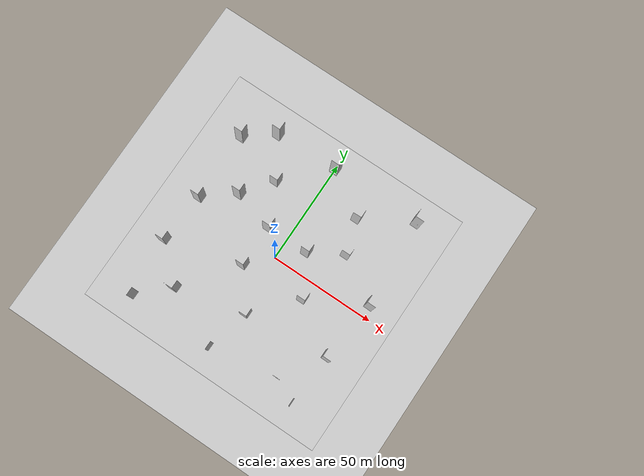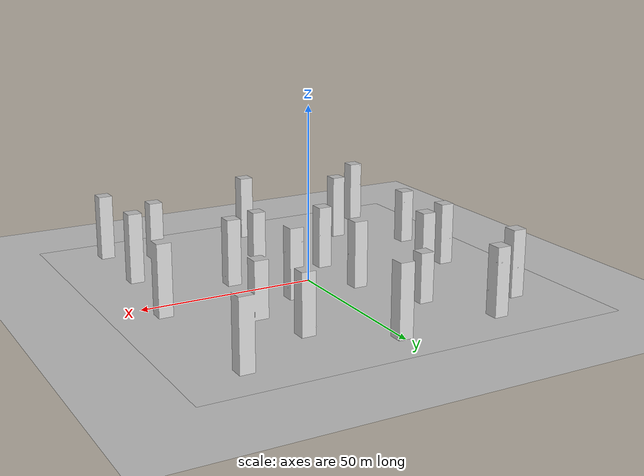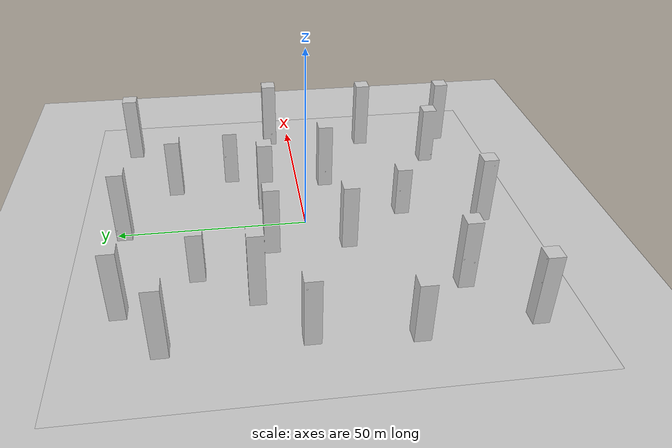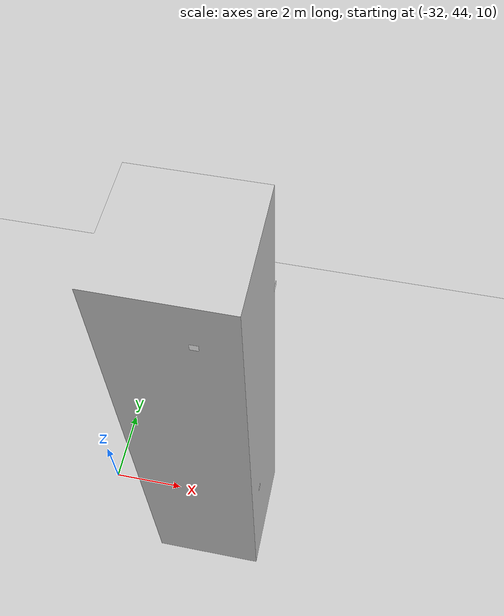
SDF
<?xml version="1.0" ?>
<sdf version="1.9">
  <world name="basic_2_world">
    <physics type="ode">
      <max_step_size>0.001</max_step_size>
      <real_time_factor>1.0</real_time_factor>
      <real_time_update_rate>1000</real_time_update_rate>
    </physics>
    <plugin name='gz::sim::systems::Physics' filename='libgz-sim-physics-system.so'/>
    <plugin name='gz::sim::systems::UserCommands' filename='libgz-sim-user-commands-system.so'/>
    <plugin name='gz::sim::systems::SceneBroadcaster' filename='libgz-sim-scene-broadcaster-system.so'/>
    <plugin name='gz::sim::systems::Contact' filename='libgz-sim-contact-system.so'/>
    <plugin name='gz::sim::systems::Imu' filename='libgz-sim-imu-system.so'/>
    <plugin name='gz::sim::systems::AirPressure' filename='libgz-sim-air-pressure-system.so'/>
    <plugin name='gz::sim::systems::Sensors' filename='libgz-sim-sensors-system.so'>
      <render_engine>ogre2</render_engine>
    </plugin>
    <gravity>0 0 -9.80665</gravity>
    <magnetic_field>6e-06 2.3e-05 -4.2e-05</magnetic_field>
    <atmosphere type='adiabatic'/>
    <scene>
      <grid>false</grid>
      <ambient>0.4 0.4 0.4 1</ambient>
      <background>0.7 0.7 0.7 1</background>
      <shadows>false</shadows>
    </scene>
    <model name="ground_plane">
      <pose>0 0 0 0 0 0</pose>
      <static>true</static>
      <link name="link">
        <collision name="collision">
          <geometry>
            <plane>
              <normal>0 0 1</normal>
              <size>120 120</size>
            </plane>
          </geometry>
        </collision>
        <visual name="visual">
          <geometry>
            <plane>
              <normal>0 0 1</normal>
              <size>120 120</size>
            </plane>
          </geometry>
          <material>
            <ambient>0.8 0.8 0.8 1</ambient>
            <diffuse>0.8 0.8 0.8 1</diffuse>
            <specular>0.8 0.8 0.8 1</specular>
          </material>
        </visual>
      </link>
    </model>
    <include>
      <pose>0 0 0 0 0 0</pose>
      <uri>model://basic_2</uri>
    </include>
    <include>
      <pose>-29.23254470951161 49.1 14.977099995924231 1.5707963267948966 0.0 3.141592653589793</pose>
      <uri>model://aruco_markers/aruco_marker_0002</uri>
    </include>
    <include>
      <pose>-1.0541602191780775 -45.900000000000006 5.851755550138486 1.5707963267948966 0.0 3.141592653589793</pose>
      <uri>model://aruco_markers/aruco_marker_0003</uri>
    </include>
    <include>
      <pose>-8.01218256106657 -7.9 9.829305790295692 1.5707963267948966 0.0 3.141592653589793</pose>
      <uri>model://aruco_markers/aruco_marker_0004</uri>
    </include>
    <include>
      <pose>-29.203096608752027 44.9 17.349173881876393 1.5707963267948966 0.0 0.0</pose>
      <uri>model://aruco_markers/aruco_marker_0005</uri>
    </include>
    <include>
      <pose>-42.74016097229358 39.1 8.387997541590257 1.5707963267948966 0.0 3.141592653589793</pose>
      <uri>model://aruco_markers/aruco_marker_0006</uri>
    </include>
    <include>
      <pose>12.1 9.062545241307616 12.84318163673694 1.5707963267948966 0.0 1.5707963267948966</pose>
      <uri>model://aruco_markers/aruco_marker_0007</uri>
    </include>
    <include>
      <pose>-45.1 5.311674250135161 16.159263661515663 1.5707963267948966 0.0 -1.5707963267948966</pose>
      <uri>model://aruco_markers/aruco_marker_0009</uri>
    </include>
    <include>
      <pose>-44.114618327764305 6.1 7.465537832950164 1.5707963267948966 0.0 3.141592653589793</pose>
      <uri>model://aruco_markers/aruco_marker_0011</uri>
    </include>
    <include>
      <pose>-44.65114909173348 -45.9 12.019877476117708 1.5707963267948966 0.0 3.141592653589793</pose>
      <uri>model://aruco_markers/aruco_marker_0012</uri>
    </include>
    <include>
      <pose>-2.1 49.5781040362832 3.377037380678456 1.5707963267948966 0.0 -1.5707963267948966</pose>
      <uri>model://aruco_markers/aruco_marker_0013</uri>
    </include>
    <include>
      <pose>25.58649643392504 16.9 5.256975622520761 1.5707963267948966 0.0 0.0</pose>
      <uri>model://aruco_markers/aruco_marker_0014</uri>
    </include>
    <include>
      <pose>-31.1 -36.10315671385324 7.534005273368832 1.5707963267948966 0.0 -1.5707963267948966</pose>
      <uri>model://aruco_markers/aruco_marker_0015</uri>
    </include>
    <include>
      <pose>-40.9 2.481696363598527 7.5064722131467185 1.5707963267948966 0.0 1.5707963267948966</pose>
      <uri>model://aruco_markers/aruco_marker_0016</uri>
    </include>
    <include>
      <pose>-44.47851732645218 -45.9 18.509892969437903 1.5707963267948966 0.0 3.141592653589793</pose>
      <uri>model://aruco_markers/aruco_marker_0018</uri>
    </include>
    <include>
      <pose>-17.115348906044826 26.9 4.742074370440876 1.5707963267948966 0.0 0.0</pose>
      <uri>model://aruco_markers/aruco_marker_0019</uri>
    </include>
    <include>
      <pose>-44.07444167377138 34.900000000000006 15.678134705991035 1.5707963267948966 0.0 0.0</pose>
      <uri>model://aruco_markers/aruco_marker_0020</uri>
    </include>
    <include>
      <pose>-41.84327798217791 34.9 3.0053530952007312 1.5707963267948966 0.0 0.0</pose>
      <uri>model://aruco_markers/aruco_marker_0021</uri>
    </include>
    <include>
      <pose>-9.260004372575356 -12.1 9.24766955233584 1.5707963267948966 0.0 0.0</pose>
      <uri>model://aruco_markers/aruco_marker_0022</uri>
    </include>
    <include>
      <pose>22.1 -7.854257865196931 2.462090564364419 1.5707963267948966 0.0 1.5707963267948966</pose>
      <uri>model://aruco_markers/aruco_marker_0023</uri>
    </include>
    <include>
      <pose>0.9 -26.044598016597277 7.556437807091673 1.5707963267948966 0.0 -1.5707963267948966</pose>
      <uri>model://aruco_markers/aruco_marker_0024</uri>
    </include>
    <include>
      <pose>27.9 -42.662296857250624 2.0164687203548777 1.5707963267948966 0.0 -1.5707963267948966</pose>
      <uri>model://aruco_markers/aruco_marker_0025</uri>
    </include>
    <include>
      <pose>43.67178977465973 45.900000000000006 7.719277517531848 1.5707963267948966 0.0 0.0</pose>
      <uri>model://aruco_markers/aruco_marker_0026</uri>
    </include>
    <include>
      <pose>-5.1 -48.96580819357738 17.370060742280813 1.5707963267948966 0.0 -1.5707963267948966</pose>
      <uri>model://aruco_markers/aruco_marker_0027</uri>
    </include>
    <include>
      <pose>-31.1 -33.44891501382584 8.754031769979127 1.5707963267948966 0.0 -1.5707963267948966</pose>
      <uri>model://aruco_markers/aruco_marker_0028</uri>
    </include>
    <include>
      <pose>-29.77998372811145 12.9 2.3724380367846685 1.5707963267948966 0.0 0.0</pose>
      <uri>model://aruco_markers/aruco_marker_0029</uri>
    </include>
    <include>
      <pose>22.9 20.377541047519852 8.738168764120308 1.5707963267948966 0.0 -1.5707963267948966</pose>
      <uri>model://aruco_markers/aruco_marker_0030</uri>
    </include>
    <include>
      <pose>-43.73460966441448 -17.899999999999995 12.713844664336346 1.5707963267948966 0.0 3.141592653589793</pose>
      <uri>model://aruco_markers/aruco_marker_0031</uri>
    </include>
    <include>
      <pose>-1.686011136797033 -50.1 13.708823625552666 1.5707963267948966 0.0 0.0</pose>
      <uri>model://aruco_markers/aruco_marker_0032</uri>
    </include>
    <include>
      <pose>-43.209413612057446 1.9 16.111668758963784 1.5707963267948966 0.0 0.0</pose>
      <uri>model://aruco_markers/aruco_marker_0034</uri>
    </include>
    <include>
      <pose>43.33171059775092 45.9 13.69988715366615 1.5707963267948966 0.0 0.0</pose>
      <uri>model://aruco_markers/aruco_marker_0035</uri>
    </include>
    <include>
      <pose>-1.614718855643451 -50.1 14.626733388167377 1.5707963267948966 0.0 0.0</pose>
      <uri>model://aruco_markers/aruco_marker_0036</uri>
    </include>
    <include>
      <pose>-43.37243632864356 -50.1 6.880233051412823 1.5707963267948966 0.0 0.0</pose>
      <uri>model://aruco_markers/aruco_marker_0037</uri>
    </include>
    <include>
      <pose>44.672246516718225 8.1 3.3733346914342293 1.5707963267948966 0.0 3.141592653589793</pose>
      <uri>model://aruco_markers/aruco_marker_0038</uri>
    </include>
    <include>
      <pose>43.9 5.370097597559235 3.7640865613113395 1.5707963267948966 0.0 -1.5707963267948966</pose>
      <uri>model://aruco_markers/aruco_marker_0040</uri>
    </include>
    <include>
      <pose>12.1 10.657860783978318 3.1407396370317153 1.5707963267948966 0.0 1.5707963267948966</pose>
      <uri>model://aruco_markers/aruco_marker_0041</uri>
    </include>
    <include>
      <pose>-26.9 -34.67494869934533 6.279338321059805 1.5707963267948966 0.0 1.5707963267948966</pose>
      <uri>model://aruco_markers/aruco_marker_0042</uri>
    </include>
    <include>
      <pose>18.12706606409931 37.1 2.3753050003865943 1.5707963267948966 0.0 3.141592653589793</pose>
      <uri>model://aruco_markers/aruco_marker_0043</uri>
    </include>
    <include>
      <pose>-27.9 48.56882235300057 15.08556918404171 1.5707963267948966 0.0 1.5707963267948966</pose>
      <uri>model://aruco_markers/aruco_marker_0044</uri>
    </include>
    <include>
      <pose>-7.9 8.774767230118803 9.037719000887954 1.5707963267948966 0.0 1.5707963267948966</pose>
      <uri>model://aruco_markers/aruco_marker_0045</uri>
    </include>
    <include>
      <pose>-20.553769675611374 26.9 6.272047221454313 1.5707963267948966 0.0 0.0</pose>
      <uri>model://aruco_markers/aruco_marker_0046</uri>
    </include>
    <include>
      <pose>-27.9 45.653642185815926 6.695241786343191 1.5707963267948966 0.0 1.5707963267948966</pose>
      <uri>model://aruco_markers/aruco_marker_0047</uri>
    </include>
    <include>
      <pose>22.1 34.434707912883376 14.159473551990542 1.5707963267948966 0.0 1.5707963267948966</pose>
      <uri>model://aruco_markers/aruco_marker_0048</uri>
    </include>
    <include>
      <pose>8.458602110123936 12.100000000000001 15.989486034547895 1.5707963267948966 0.0 3.141592653589793</pose>
      <uri>model://aruco_markers/aruco_marker_0049</uri>
    </include>
    <include>
      <pose>17.9 -8.119774656814425 4.573616861092575 1.5707963267948966 0.0 -1.5707963267948966</pose>
      <uri>model://aruco_markers/aruco_marker_0050</uri>
    </include>
    <light type="directional" name="sun">
      <cast_shadows>false</cast_shadows>
      <pose>0 0 100 0 0 0</pose>
      <diffuse>0.8 0.8 0.8 1</diffuse>
      <specular>0.2 0.2 0.2 1</specular>
      <attenuation>
        <range>1000</range>
        <constant>0.9</constant>
        <linear>0.01</linear>
        <quadratic>0.001</quadratic>
      </attenuation>
      <direction>-0.5 0.1 -0.9</direction>
    </light>
  </world>
</sdf>

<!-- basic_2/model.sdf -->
<sdf version="1.9">
  <model name="basic_2">
    <static>true</static>
    <link name="link">
      <collision name="collision">
        <geometry>
          <mesh>
            <uri>model://basic_2/meshes/basic_2.stl</uri>
          </mesh>
        </geometry>
      </collision>

      <!-- Attach collision sensor -->
      <sensor name="contact_sensor" type="contact">
        <always_on>1</always_on>
        <update_rate>30</update_rate>
        <contact>
          <collision>collision</collision>
        </contact>
      </sensor>

      <visual name="visual">
        <geometry>
          <mesh>
            <uri>model://basic_2/meshes/basic_2.stl</uri>
          </mesh>
        </geometry>
        <material>
            <ambient>0.8 0.8 0.8 1</ambient>
            <diffuse>0.8 0.8 0.8 1</diffuse>
            <specular>0.8 0.8 0.8 1</specular>
        </material>
      </visual>
    </link>
  </model>
</sdf>

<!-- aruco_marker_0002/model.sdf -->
<sdf version="1.9">
  <model name="aruco_marker_0002">
    <static>true</static>
    <link name="link">
      <visual name="aruco_marker_0002_vis">
        <pose>0 0 0 0 0 0</pose>
        <geometry>
          <plane>
            <normal>0 0 1</normal>
            <size>0.25 0.25</size>
          </plane>
        </geometry>
        <material>
          <pbr>
            <metal>
              <albedo_map>marker_0002.png</albedo_map>
              <metalness>0.0</metalness>
            </metal>
          </pbr>
          <ambient>1 1 1 1</ambient>
          <diffuse>1 1 1 1</diffuse>
          <specular>0 0 0 1</specular>
        </material>
      </visual>
    </link>
  </model>
</sdf>

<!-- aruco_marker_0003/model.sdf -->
<sdf version="1.9">
  <model name="aruco_marker_0003">
    <static>true</static>
    <link name="link">
      <visual name="aruco_marker_0003_vis">
        <pose>0 0 0 0 0 0</pose>
        <geometry>
          <plane>
            <normal>0 0 1</normal>
            <size>0.25 0.25</size>
          </plane>
        </geometry>
        <material>
          <pbr>
            <metal>
              <albedo_map>marker_0003.png</albedo_map>
              <metalness>0.0</metalness>
            </metal>
          </pbr>
          <ambient>1 1 1 1</ambient>
          <diffuse>1 1 1 1</diffuse>
          <specular>0 0 0 1</specular>
        </material>
      </visual>
    </link>
  </model>
</sdf>

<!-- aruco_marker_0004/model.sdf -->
<sdf version="1.9">
  <model name="aruco_marker_0004">
    <static>true</static>
    <link name="link">
      <visual name="aruco_marker_0004_vis">
        <pose>0 0 0 0 0 0</pose>
        <geometry>
          <plane>
            <normal>0 0 1</normal>
            <size>0.25 0.25</size>
          </plane>
        </geometry>
        <material>
          <pbr>
            <metal>
              <albedo_map>marker_0004.png</albedo_map>
              <metalness>0.0</metalness>
            </metal>
          </pbr>
          <ambient>1 1 1 1</ambient>
          <diffuse>1 1 1 1</diffuse>
          <specular>0 0 0 1</specular>
        </material>
      </visual>
    </link>
  </model>
</sdf>

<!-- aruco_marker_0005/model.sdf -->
<sdf version="1.9">
  <model name="aruco_marker_0005">
    <static>true</static>
    <link name="link">
      <visual name="aruco_marker_0005_vis">
        <pose>0 0 0 0 0 0</pose>
        <geometry>
          <plane>
            <normal>0 0 1</normal>
            <size>0.25 0.25</size>
          </plane>
        </geometry>
        <material>
          <pbr>
            <metal>
              <albedo_map>marker_0005.png</albedo_map>
              <metalness>0.0</metalness>
            </metal>
          </pbr>
          <ambient>1 1 1 1</ambient>
          <diffuse>1 1 1 1</diffuse>
          <specular>0 0 0 1</specular>
        </material>
      </visual>
    </link>
  </model>
</sdf>

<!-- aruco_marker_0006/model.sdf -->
<sdf version="1.9">
  <model name="aruco_marker_0006">
    <static>true</static>
    <link name="link">
      <visual name="aruco_marker_0006_vis">
        <pose>0 0 0 0 0 0</pose>
        <geometry>
          <plane>
            <normal>0 0 1</normal>
            <size>0.25 0.25</size>
          </plane>
        </geometry>
        <material>
          <pbr>
            <metal>
              <albedo_map>marker_0006.png</albedo_map>
              <metalness>0.0</metalness>
            </metal>
          </pbr>
          <ambient>1 1 1 1</ambient>
          <diffuse>1 1 1 1</diffuse>
          <specular>0 0 0 1</specular>
        </material>
      </visual>
    </link>
  </model>
</sdf>

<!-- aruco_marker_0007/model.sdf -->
<sdf version="1.9">
  <model name="aruco_marker_0007">
    <static>true</static>
    <link name="link">
      <visual name="aruco_marker_0007_vis">
        <pose>0 0 0 0 0 0</pose>
        <geometry>
          <plane>
            <normal>0 0 1</normal>
            <size>0.25 0.25</size>
          </plane>
        </geometry>
        <material>
          <pbr>
            <metal>
              <albedo_map>marker_0007.png</albedo_map>
              <metalness>0.0</metalness>
            </metal>
          </pbr>
          <ambient>1 1 1 1</ambient>
          <diffuse>1 1 1 1</diffuse>
          <specular>0 0 0 1</specular>
        </material>
      </visual>
    </link>
  </model>
</sdf>

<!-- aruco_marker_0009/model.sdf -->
<sdf version="1.9">
  <model name="aruco_marker_0009">
    <static>true</static>
    <link name="link">
      <visual name="aruco_marker_0009_vis">
        <pose>0 0 0 0 0 0</pose>
        <geometry>
          <plane>
            <normal>0 0 1</normal>
            <size>0.25 0.25</size>
          </plane>
        </geometry>
        <material>
          <pbr>
            <metal>
              <albedo_map>marker_0009.png</albedo_map>
              <metalness>0.0</metalness>
            </metal>
          </pbr>
          <ambient>1 1 1 1</ambient>
          <diffuse>1 1 1 1</diffuse>
          <specular>0 0 0 1</specular>
        </material>
      </visual>
    </link>
  </model>
</sdf>

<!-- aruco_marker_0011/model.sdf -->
<sdf version="1.9">
  <model name="aruco_marker_0011">
    <static>true</static>
    <link name="link">
      <visual name="aruco_marker_0011_vis">
        <pose>0 0 0 0 0 0</pose>
        <geometry>
          <plane>
            <normal>0 0 1</normal>
            <size>0.25 0.25</size>
          </plane>
        </geometry>
        <material>
          <pbr>
            <metal>
              <albedo_map>marker_0011.png</albedo_map>
              <metalness>0.0</metalness>
            </metal>
          </pbr>
          <ambient>1 1 1 1</ambient>
          <diffuse>1 1 1 1</diffuse>
          <specular>0 0 0 1</specular>
        </material>
      </visual>
    </link>
  </model>
</sdf>

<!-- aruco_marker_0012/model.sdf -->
<sdf version="1.9">
  <model name="aruco_marker_0012">
    <static>true</static>
    <link name="link">
      <visual name="aruco_marker_0012_vis">
        <pose>0 0 0 0 0 0</pose>
        <geometry>
          <plane>
            <normal>0 0 1</normal>
            <size>0.25 0.25</size>
          </plane>
        </geometry>
        <material>
          <pbr>
            <metal>
              <albedo_map>marker_0012.png</albedo_map>
              <metalness>0.0</metalness>
            </metal>
          </pbr>
          <ambient>1 1 1 1</ambient>
          <diffuse>1 1 1 1</diffuse>
          <specular>0 0 0 1</specular>
        </material>
      </visual>
    </link>
  </model>
</sdf>

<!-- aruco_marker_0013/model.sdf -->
<sdf version="1.9">
  <model name="aruco_marker_0013">
    <static>true</static>
    <link name="link">
      <visual name="aruco_marker_0013_vis">
        <pose>0 0 0 0 0 0</pose>
        <geometry>
          <plane>
            <normal>0 0 1</normal>
            <size>0.25 0.25</size>
          </plane>
        </geometry>
        <material>
          <pbr>
            <metal>
              <albedo_map>marker_0013.png</albedo_map>
              <metalness>0.0</metalness>
            </metal>
          </pbr>
          <ambient>1 1 1 1</ambient>
          <diffuse>1 1 1 1</diffuse>
          <specular>0 0 0 1</specular>
        </material>
      </visual>
    </link>
  </model>
</sdf>

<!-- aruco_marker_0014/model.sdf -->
<sdf version="1.9">
  <model name="aruco_marker_0014">
    <static>true</static>
    <link name="link">
      <visual name="aruco_marker_0014_vis">
        <pose>0 0 0 0 0 0</pose>
        <geometry>
          <plane>
            <normal>0 0 1</normal>
            <size>0.25 0.25</size>
          </plane>
        </geometry>
        <material>
          <pbr>
            <metal>
              <albedo_map>marker_0014.png</albedo_map>
              <metalness>0.0</metalness>
            </metal>
          </pbr>
          <ambient>1 1 1 1</ambient>
          <diffuse>1 1 1 1</diffuse>
          <specular>0 0 0 1</specular>
        </material>
      </visual>
    </link>
  </model>
</sdf>

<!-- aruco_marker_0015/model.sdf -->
<sdf version="1.9">
  <model name="aruco_marker_0015">
    <static>true</static>
    <link name="link">
      <visual name="aruco_marker_0015_vis">
        <pose>0 0 0 0 0 0</pose>
        <geometry>
          <plane>
            <normal>0 0 1</normal>
            <size>0.25 0.25</size>
          </plane>
        </geometry>
        <material>
          <pbr>
            <metal>
              <albedo_map>marker_0015.png</albedo_map>
              <metalness>0.0</metalness>
            </metal>
          </pbr>
          <ambient>1 1 1 1</ambient>
          <diffuse>1 1 1 1</diffuse>
          <specular>0 0 0 1</specular>
        </material>
      </visual>
    </link>
  </model>
</sdf>

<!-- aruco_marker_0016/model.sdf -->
<sdf version="1.9">
  <model name="aruco_marker_0016">
    <static>true</static>
    <link name="link">
      <visual name="aruco_marker_0016_vis">
        <pose>0 0 0 0 0 0</pose>
        <geometry>
          <plane>
            <normal>0 0 1</normal>
            <size>0.25 0.25</size>
          </plane>
        </geometry>
        <material>
          <pbr>
            <metal>
              <albedo_map>marker_0016.png</albedo_map>
              <metalness>0.0</metalness>
            </metal>
          </pbr>
          <ambient>1 1 1 1</ambient>
          <diffuse>1 1 1 1</diffuse>
          <specular>0 0 0 1</specular>
        </material>
      </visual>
    </link>
  </model>
</sdf>

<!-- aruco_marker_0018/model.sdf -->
<sdf version="1.9">
  <model name="aruco_marker_0018">
    <static>true</static>
    <link name="link">
      <visual name="aruco_marker_0018_vis">
        <pose>0 0 0 0 0 0</pose>
        <geometry>
          <plane>
            <normal>0 0 1</normal>
            <size>0.25 0.25</size>
          </plane>
        </geometry>
        <material>
          <pbr>
            <metal>
              <albedo_map>marker_0018.png</albedo_map>
              <metalness>0.0</metalness>
            </metal>
          </pbr>
          <ambient>1 1 1 1</ambient>
          <diffuse>1 1 1 1</diffuse>
          <specular>0 0 0 1</specular>
        </material>
      </visual>
    </link>
  </model>
</sdf>

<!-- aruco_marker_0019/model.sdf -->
<sdf version="1.9">
  <model name="aruco_marker_0019">
    <static>true</static>
    <link name="link">
      <visual name="aruco_marker_0019_vis">
        <pose>0 0 0 0 0 0</pose>
        <geometry>
          <plane>
            <normal>0 0 1</normal>
            <size>0.25 0.25</size>
          </plane>
        </geometry>
        <material>
          <pbr>
            <metal>
              <albedo_map>marker_0019.png</albedo_map>
              <metalness>0.0</metalness>
            </metal>
          </pbr>
          <ambient>1 1 1 1</ambient>
          <diffuse>1 1 1 1</diffuse>
          <specular>0 0 0 1</specular>
        </material>
      </visual>
    </link>
  </model>
</sdf>

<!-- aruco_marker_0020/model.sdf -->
<sdf version="1.9">
  <model name="aruco_marker_0020">
    <static>true</static>
    <link name="link">
      <visual name="aruco_marker_0020_vis">
        <pose>0 0 0 0 0 0</pose>
        <geometry>
          <plane>
            <normal>0 0 1</normal>
            <size>0.25 0.25</size>
          </plane>
        </geometry>
        <material>
          <pbr>
            <metal>
              <albedo_map>marker_0020.png</albedo_map>
              <metalness>0.0</metalness>
            </metal>
          </pbr>
          <ambient>1 1 1 1</ambient>
          <diffuse>1 1 1 1</diffuse>
          <specular>0 0 0 1</specular>
        </material>
      </visual>
    </link>
  </model>
</sdf>

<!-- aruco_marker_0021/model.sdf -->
<sdf version="1.9">
  <model name="aruco_marker_0021">
    <static>true</static>
    <link name="link">
      <visual name="aruco_marker_0021_vis">
        <pose>0 0 0 0 0 0</pose>
        <geometry>
          <plane>
            <normal>0 0 1</normal>
            <size>0.25 0.25</size>
          </plane>
        </geometry>
        <material>
          <pbr>
            <metal>
              <albedo_map>marker_0021.png</albedo_map>
              <metalness>0.0</metalness>
            </metal>
          </pbr>
          <ambient>1 1 1 1</ambient>
          <diffuse>1 1 1 1</diffuse>
          <specular>0 0 0 1</specular>
        </material>
      </visual>
    </link>
  </model>
</sdf>

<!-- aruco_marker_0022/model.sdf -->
<sdf version="1.9">
  <model name="aruco_marker_0022">
    <static>true</static>
    <link name="link">
      <visual name="aruco_marker_0022_vis">
        <pose>0 0 0 0 0 0</pose>
        <geometry>
          <plane>
            <normal>0 0 1</normal>
            <size>0.25 0.25</size>
          </plane>
        </geometry>
        <material>
          <pbr>
            <metal>
              <albedo_map>marker_0022.png</albedo_map>
              <metalness>0.0</metalness>
            </metal>
          </pbr>
          <ambient>1 1 1 1</ambient>
          <diffuse>1 1 1 1</diffuse>
          <specular>0 0 0 1</specular>
        </material>
      </visual>
    </link>
  </model>
</sdf>

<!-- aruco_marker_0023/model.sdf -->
<sdf version="1.9">
  <model name="aruco_marker_0023">
    <static>true</static>
    <link name="link">
      <visual name="aruco_marker_0023_vis">
        <pose>0 0 0 0 0 0</pose>
        <geometry>
          <plane>
            <normal>0 0 1</normal>
            <size>0.25 0.25</size>
          </plane>
        </geometry>
        <material>
          <pbr>
            <metal>
              <albedo_map>marker_0023.png</albedo_map>
              <metalness>0.0</metalness>
            </metal>
          </pbr>
          <ambient>1 1 1 1</ambient>
          <diffuse>1 1 1 1</diffuse>
          <specular>0 0 0 1</specular>
        </material>
      </visual>
    </link>
  </model>
</sdf>

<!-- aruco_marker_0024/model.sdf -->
<sdf version="1.9">
  <model name="aruco_marker_0024">
    <static>true</static>
    <link name="link">
      <visual name="aruco_marker_0024_vis">
        <pose>0 0 0 0 0 0</pose>
        <geometry>
          <plane>
            <normal>0 0 1</normal>
            <size>0.25 0.25</size>
          </plane>
        </geometry>
        <material>
          <pbr>
            <metal>
              <albedo_map>marker_0024.png</albedo_map>
              <metalness>0.0</metalness>
            </metal>
          </pbr>
          <ambient>1 1 1 1</ambient>
          <diffuse>1 1 1 1</diffuse>
          <specular>0 0 0 1</specular>
        </material>
      </visual>
    </link>
  </model>
</sdf>

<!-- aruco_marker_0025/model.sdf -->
<sdf version="1.9">
  <model name="aruco_marker_0025">
    <static>true</static>
    <link name="link">
      <visual name="aruco_marker_0025_vis">
        <pose>0 0 0 0 0 0</pose>
        <geometry>
          <plane>
            <normal>0 0 1</normal>
            <size>0.25 0.25</size>
          </plane>
        </geometry>
        <material>
          <pbr>
            <metal>
              <albedo_map>marker_0025.png</albedo_map>
              <metalness>0.0</metalness>
            </metal>
          </pbr>
          <ambient>1 1 1 1</ambient>
          <diffuse>1 1 1 1</diffuse>
          <specular>0 0 0 1</specular>
        </material>
      </visual>
    </link>
  </model>
</sdf>

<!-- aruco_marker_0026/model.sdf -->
<sdf version="1.9">
  <model name="aruco_marker_0026">
    <static>true</static>
    <link name="link">
      <visual name="aruco_marker_0026_vis">
        <pose>0 0 0 0 0 0</pose>
        <geometry>
          <plane>
            <normal>0 0 1</normal>
            <size>0.25 0.25</size>
          </plane>
        </geometry>
        <material>
          <pbr>
            <metal>
              <albedo_map>marker_0026.png</albedo_map>
              <metalness>0.0</metalness>
            </metal>
          </pbr>
          <ambient>1 1 1 1</ambient>
          <diffuse>1 1 1 1</diffuse>
          <specular>0 0 0 1</specular>
        </material>
      </visual>
    </link>
  </model>
</sdf>

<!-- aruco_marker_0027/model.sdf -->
<sdf version="1.9">
  <model name="aruco_marker_0027">
    <static>true</static>
    <link name="link">
      <visual name="aruco_marker_0027_vis">
        <pose>0 0 0 0 0 0</pose>
        <geometry>
          <plane>
            <normal>0 0 1</normal>
            <size>0.25 0.25</size>
          </plane>
        </geometry>
        <material>
          <pbr>
            <metal>
              <albedo_map>marker_0027.png</albedo_map>
              <metalness>0.0</metalness>
            </metal>
          </pbr>
          <ambient>1 1 1 1</ambient>
          <diffuse>1 1 1 1</diffuse>
          <specular>0 0 0 1</specular>
        </material>
      </visual>
    </link>
  </model>
</sdf>

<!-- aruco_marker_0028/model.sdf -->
<sdf version="1.9">
  <model name="aruco_marker_0028">
    <static>true</static>
    <link name="link">
      <visual name="aruco_marker_0028_vis">
        <pose>0 0 0 0 0 0</pose>
        <geometry>
          <plane>
            <normal>0 0 1</normal>
            <size>0.25 0.25</size>
          </plane>
        </geometry>
        <material>
          <pbr>
            <metal>
              <albedo_map>marker_0028.png</albedo_map>
              <metalness>0.0</metalness>
            </metal>
          </pbr>
          <ambient>1 1 1 1</ambient>
          <diffuse>1 1 1 1</diffuse>
          <specular>0 0 0 1</specular>
        </material>
      </visual>
    </link>
  </model>
</sdf>

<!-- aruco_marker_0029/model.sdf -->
<sdf version="1.9">
  <model name="aruco_marker_0029">
    <static>true</static>
    <link name="link">
      <visual name="aruco_marker_0029_vis">
        <pose>0 0 0 0 0 0</pose>
        <geometry>
          <plane>
            <normal>0 0 1</normal>
            <size>0.25 0.25</size>
          </plane>
        </geometry>
        <material>
          <pbr>
            <metal>
              <albedo_map>marker_0029.png</albedo_map>
              <metalness>0.0</metalness>
            </metal>
          </pbr>
          <ambient>1 1 1 1</ambient>
          <diffuse>1 1 1 1</diffuse>
          <specular>0 0 0 1</specular>
        </material>
      </visual>
    </link>
  </model>
</sdf>

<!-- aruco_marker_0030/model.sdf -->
<sdf version="1.9">
  <model name="aruco_marker_0030">
    <static>true</static>
    <link name="link">
      <visual name="aruco_marker_0030_vis">
        <pose>0 0 0 0 0 0</pose>
        <geometry>
          <plane>
            <normal>0 0 1</normal>
            <size>0.25 0.25</size>
          </plane>
        </geometry>
        <material>
          <pbr>
            <metal>
              <albedo_map>marker_0030.png</albedo_map>
              <metalness>0.0</metalness>
            </metal>
          </pbr>
          <ambient>1 1 1 1</ambient>
          <diffuse>1 1 1 1</diffuse>
          <specular>0 0 0 1</specular>
        </material>
      </visual>
    </link>
  </model>
</sdf>

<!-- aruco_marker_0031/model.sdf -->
<sdf version="1.9">
  <model name="aruco_marker_0031">
    <static>true</static>
    <link name="link">
      <visual name="aruco_marker_0031_vis">
        <pose>0 0 0 0 0 0</pose>
        <geometry>
          <plane>
            <normal>0 0 1</normal>
            <size>0.25 0.25</size>
          </plane>
        </geometry>
        <material>
          <pbr>
            <metal>
              <albedo_map>marker_0031.png</albedo_map>
              <metalness>0.0</metalness>
            </metal>
          </pbr>
          <ambient>1 1 1 1</ambient>
          <diffuse>1 1 1 1</diffuse>
          <specular>0 0 0 1</specular>
        </material>
      </visual>
    </link>
  </model>
</sdf>

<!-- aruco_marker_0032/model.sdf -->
<sdf version="1.9">
  <model name="aruco_marker_0032">
    <static>true</static>
    <link name="link">
      <visual name="aruco_marker_0032_vis">
        <pose>0 0 0 0 0 0</pose>
        <geometry>
          <plane>
            <normal>0 0 1</normal>
            <size>0.25 0.25</size>
          </plane>
        </geometry>
        <material>
          <pbr>
            <metal>
              <albedo_map>marker_0032.png</albedo_map>
              <metalness>0.0</metalness>
            </metal>
          </pbr>
          <ambient>1 1 1 1</ambient>
          <diffuse>1 1 1 1</diffuse>
          <specular>0 0 0 1</specular>
        </material>
      </visual>
    </link>
  </model>
</sdf>

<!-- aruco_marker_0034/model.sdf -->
<sdf version="1.9">
  <model name="aruco_marker_0034">
    <static>true</static>
    <link name="link">
      <visual name="aruco_marker_0034_vis">
        <pose>0 0 0 0 0 0</pose>
        <geometry>
          <plane>
            <normal>0 0 1</normal>
            <size>0.25 0.25</size>
          </plane>
        </geometry>
        <material>
          <pbr>
            <metal>
              <albedo_map>marker_0034.png</albedo_map>
              <metalness>0.0</metalness>
            </metal>
          </pbr>
          <ambient>1 1 1 1</ambient>
          <diffuse>1 1 1 1</diffuse>
          <specular>0 0 0 1</specular>
        </material>
      </visual>
    </link>
  </model>
</sdf>

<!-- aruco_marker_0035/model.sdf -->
<sdf version="1.9">
  <model name="aruco_marker_0035">
    <static>true</static>
    <link name="link">
      <visual name="aruco_marker_0035_vis">
        <pose>0 0 0 0 0 0</pose>
        <geometry>
          <plane>
            <normal>0 0 1</normal>
            <size>0.25 0.25</size>
          </plane>
        </geometry>
        <material>
          <pbr>
            <metal>
              <albedo_map>marker_0035.png</albedo_map>
              <metalness>0.0</metalness>
            </metal>
          </pbr>
          <ambient>1 1 1 1</ambient>
          <diffuse>1 1 1 1</diffuse>
          <specular>0 0 0 1</specular>
        </material>
      </visual>
    </link>
  </model>
</sdf>

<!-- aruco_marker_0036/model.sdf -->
<sdf version="1.9">
  <model name="aruco_marker_0036">
    <static>true</static>
    <link name="link">
      <visual name="aruco_marker_0036_vis">
        <pose>0 0 0 0 0 0</pose>
        <geometry>
          <plane>
            <normal>0 0 1</normal>
            <size>0.25 0.25</size>
          </plane>
        </geometry>
        <material>
          <pbr>
            <metal>
              <albedo_map>marker_0036.png</albedo_map>
              <metalness>0.0</metalness>
            </metal>
          </pbr>
          <ambient>1 1 1 1</ambient>
          <diffuse>1 1 1 1</diffuse>
          <specular>0 0 0 1</specular>
        </material>
      </visual>
    </link>
  </model>
</sdf>

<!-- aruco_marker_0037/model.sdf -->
<sdf version="1.9">
  <model name="aruco_marker_0037">
    <static>true</static>
    <link name="link">
      <visual name="aruco_marker_0037_vis">
        <pose>0 0 0 0 0 0</pose>
        <geometry>
          <plane>
            <normal>0 0 1</normal>
            <size>0.25 0.25</size>
          </plane>
        </geometry>
        <material>
          <pbr>
            <metal>
              <albedo_map>marker_0037.png</albedo_map>
              <metalness>0.0</metalness>
            </metal>
          </pbr>
          <ambient>1 1 1 1</ambient>
          <diffuse>1 1 1 1</diffuse>
          <specular>0 0 0 1</specular>
        </material>
      </visual>
    </link>
  </model>
</sdf>

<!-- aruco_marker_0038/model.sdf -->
<sdf version="1.9">
  <model name="aruco_marker_0038">
    <static>true</static>
    <link name="link">
      <visual name="aruco_marker_0038_vis">
        <pose>0 0 0 0 0 0</pose>
        <geometry>
          <plane>
            <normal>0 0 1</normal>
            <size>0.25 0.25</size>
          </plane>
        </geometry>
        <material>
          <pbr>
            <metal>
              <albedo_map>marker_0038.png</albedo_map>
              <metalness>0.0</metalness>
            </metal>
          </pbr>
          <ambient>1 1 1 1</ambient>
          <diffuse>1 1 1 1</diffuse>
          <specular>0 0 0 1</specular>
        </material>
      </visual>
    </link>
  </model>
</sdf>

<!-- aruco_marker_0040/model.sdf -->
<sdf version="1.9">
  <model name="aruco_marker_0040">
    <static>true</static>
    <link name="link">
      <visual name="aruco_marker_0040_vis">
        <pose>0 0 0 0 0 0</pose>
        <geometry>
          <plane>
            <normal>0 0 1</normal>
            <size>0.25 0.25</size>
          </plane>
        </geometry>
        <material>
          <pbr>
            <metal>
              <albedo_map>marker_0040.png</albedo_map>
              <metalness>0.0</metalness>
            </metal>
          </pbr>
          <ambient>1 1 1 1</ambient>
          <diffuse>1 1 1 1</diffuse>
          <specular>0 0 0 1</specular>
        </material>
      </visual>
    </link>
  </model>
</sdf>

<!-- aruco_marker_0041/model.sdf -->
<sdf version="1.9">
  <model name="aruco_marker_0041">
    <static>true</static>
    <link name="link">
      <visual name="aruco_marker_0041_vis">
        <pose>0 0 0 0 0 0</pose>
        <geometry>
          <plane>
            <normal>0 0 1</normal>
            <size>0.25 0.25</size>
          </plane>
        </geometry>
        <material>
          <pbr>
            <metal>
              <albedo_map>marker_0041.png</albedo_map>
              <metalness>0.0</metalness>
            </metal>
          </pbr>
          <ambient>1 1 1 1</ambient>
          <diffuse>1 1 1 1</diffuse>
          <specular>0 0 0 1</specular>
        </material>
      </visual>
    </link>
  </model>
</sdf>

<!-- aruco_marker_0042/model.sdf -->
<sdf version="1.9">
  <model name="aruco_marker_0042">
    <static>true</static>
    <link name="link">
      <visual name="aruco_marker_0042_vis">
        <pose>0 0 0 0 0 0</pose>
        <geometry>
          <plane>
            <normal>0 0 1</normal>
            <size>0.25 0.25</size>
          </plane>
        </geometry>
        <material>
          <pbr>
            <metal>
              <albedo_map>marker_0042.png</albedo_map>
              <metalness>0.0</metalness>
            </metal>
          </pbr>
          <ambient>1 1 1 1</ambient>
          <diffuse>1 1 1 1</diffuse>
          <specular>0 0 0 1</specular>
        </material>
      </visual>
    </link>
  </model>
</sdf>

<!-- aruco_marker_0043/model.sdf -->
<sdf version="1.9">
  <model name="aruco_marker_0043">
    <static>true</static>
    <link name="link">
      <visual name="aruco_marker_0043_vis">
        <pose>0 0 0 0 0 0</pose>
        <geometry>
          <plane>
            <normal>0 0 1</normal>
            <size>0.25 0.25</size>
          </plane>
        </geometry>
        <material>
          <pbr>
            <metal>
              <albedo_map>marker_0043.png</albedo_map>
              <metalness>0.0</metalness>
            </metal>
          </pbr>
          <ambient>1 1 1 1</ambient>
          <diffuse>1 1 1 1</diffuse>
          <specular>0 0 0 1</specular>
        </material>
      </visual>
    </link>
  </model>
</sdf>

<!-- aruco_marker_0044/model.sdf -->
<sdf version="1.9">
  <model name="aruco_marker_0044">
    <static>true</static>
    <link name="link">
      <visual name="aruco_marker_0044_vis">
        <pose>0 0 0 0 0 0</pose>
        <geometry>
          <plane>
            <normal>0 0 1</normal>
            <size>0.25 0.25</size>
          </plane>
        </geometry>
        <material>
          <pbr>
            <metal>
              <albedo_map>marker_0044.png</albedo_map>
              <metalness>0.0</metalness>
            </metal>
          </pbr>
          <ambient>1 1 1 1</ambient>
          <diffuse>1 1 1 1</diffuse>
          <specular>0 0 0 1</specular>
        </material>
      </visual>
    </link>
  </model>
</sdf>

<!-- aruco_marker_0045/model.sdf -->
<sdf version="1.9">
  <model name="aruco_marker_0045">
    <static>true</static>
    <link name="link">
      <visual name="aruco_marker_0045_vis">
        <pose>0 0 0 0 0 0</pose>
        <geometry>
          <plane>
            <normal>0 0 1</normal>
            <size>0.25 0.25</size>
          </plane>
        </geometry>
        <material>
          <pbr>
            <metal>
              <albedo_map>marker_0045.png</albedo_map>
              <metalness>0.0</metalness>
            </metal>
          </pbr>
          <ambient>1 1 1 1</ambient>
          <diffuse>1 1 1 1</diffuse>
          <specular>0 0 0 1</specular>
        </material>
      </visual>
    </link>
  </model>
</sdf>

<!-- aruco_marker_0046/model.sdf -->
<sdf version="1.9">
  <model name="aruco_marker_0046">
    <static>true</static>
    <link name="link">
      <visual name="aruco_marker_0046_vis">
        <pose>0 0 0 0 0 0</pose>
        <geometry>
          <plane>
            <normal>0 0 1</normal>
            <size>0.25 0.25</size>
          </plane>
        </geometry>
        <material>
          <pbr>
            <metal>
              <albedo_map>marker_0046.png</albedo_map>
              <metalness>0.0</metalness>
            </metal>
          </pbr>
          <ambient>1 1 1 1</ambient>
          <diffuse>1 1 1 1</diffuse>
          <specular>0 0 0 1</specular>
        </material>
      </visual>
    </link>
  </model>
</sdf>

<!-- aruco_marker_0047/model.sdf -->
<sdf version="1.9">
  <model name="aruco_marker_0047">
    <static>true</static>
    <link name="link">
      <visual name="aruco_marker_0047_vis">
        <pose>0 0 0 0 0 0</pose>
        <geometry>
          <plane>
            <normal>0 0 1</normal>
            <size>0.25 0.25</size>
          </plane>
        </geometry>
        <material>
          <pbr>
            <metal>
              <albedo_map>marker_0047.png</albedo_map>
              <metalness>0.0</metalness>
            </metal>
          </pbr>
          <ambient>1 1 1 1</ambient>
          <diffuse>1 1 1 1</diffuse>
          <specular>0 0 0 1</specular>
        </material>
      </visual>
    </link>
  </model>
</sdf>

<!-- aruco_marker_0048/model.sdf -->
<sdf version="1.9">
  <model name="aruco_marker_0048">
    <static>true</static>
    <link name="link">
      <visual name="aruco_marker_0048_vis">
        <pose>0 0 0 0 0 0</pose>
        <geometry>
          <plane>
            <normal>0 0 1</normal>
            <size>0.25 0.25</size>
          </plane>
        </geometry>
        <material>
          <pbr>
            <metal>
              <albedo_map>marker_0048.png</albedo_map>
              <metalness>0.0</metalness>
            </metal>
          </pbr>
          <ambient>1 1 1 1</ambient>
          <diffuse>1 1 1 1</diffuse>
          <specular>0 0 0 1</specular>
        </material>
      </visual>
    </link>
  </model>
</sdf>

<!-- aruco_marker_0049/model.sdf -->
<sdf version="1.9">
  <model name="aruco_marker_0049">
    <static>true</static>
    <link name="link">
      <visual name="aruco_marker_0049_vis">
        <pose>0 0 0 0 0 0</pose>
        <geometry>
          <plane>
            <normal>0 0 1</normal>
            <size>0.25 0.25</size>
          </plane>
        </geometry>
        <material>
          <pbr>
            <metal>
              <albedo_map>marker_0049.png</albedo_map>
              <metalness>0.0</metalness>
            </metal>
          </pbr>
          <ambient>1 1 1 1</ambient>
          <diffuse>1 1 1 1</diffuse>
          <specular>0 0 0 1</specular>
        </material>
      </visual>
    </link>
  </model>
</sdf>

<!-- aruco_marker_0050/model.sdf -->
<sdf version="1.9">
  <model name="aruco_marker_0050">
    <static>true</static>
    <link name="link">
      <visual name="aruco_marker_0050_vis">
        <pose>0 0 0 0 0 0</pose>
        <geometry>
          <plane>
            <normal>0 0 1</normal>
            <size>0.25 0.25</size>
          </plane>
        </geometry>
        <material>
          <pbr>
            <metal>
              <albedo_map>marker_0050.png</albedo_map>
              <metalness>0.0</metalness>
            </metal>
          </pbr>
          <ambient>1 1 1 1</ambient>
          <diffuse>1 1 1 1</diffuse>
          <specular>0 0 0 1</specular>
        </material>
      </visual>
    </link>
  </model>
</sdf>
